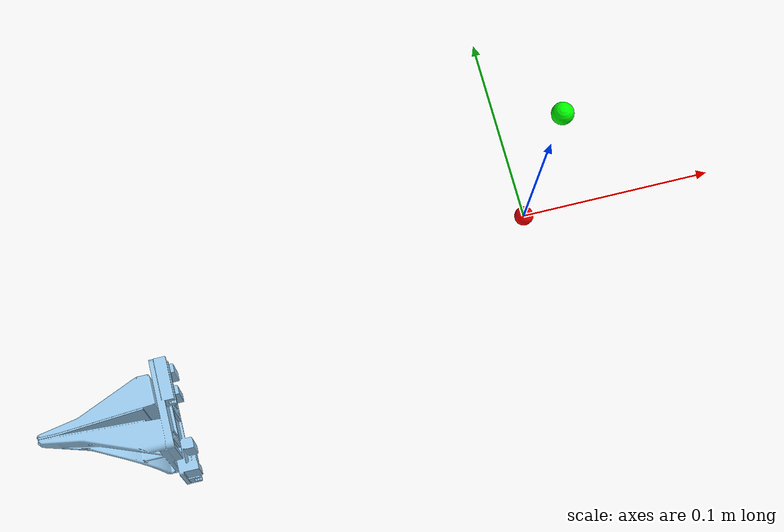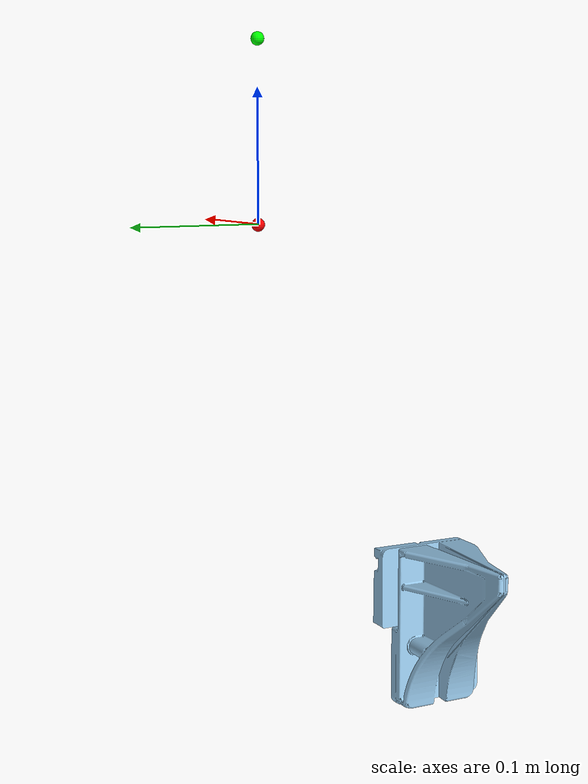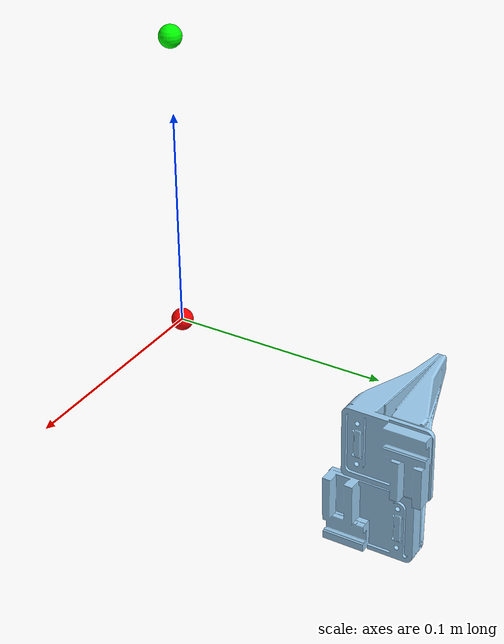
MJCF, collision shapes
<mujoco model="linear_3507">
  <compiler angle="radian" meshdir="assets"/>

  <asset>
    <mesh name="gripper" file="gripper.stl"/>
    <mesh name="tip_left" file="tip_left.stl"/>
    <mesh name="tip_right" file="tip_right.stl"/>
  </asset>

  <worldbody>
    <body name="gripper" pos="0 0 0" quat="0 0.70711 0.70711 0">
      <inertial pos="-3.57066e-05 0.000249371 -0.0293133" quat="0.667981 0.744113 -0.00433092 0.00882801" mass="0.303" diaginertia="0.000409686 0.000369758 0.000324415"/>
      <geom pos="-0.014 -0.0463995 0.0731" quat="1 0 0 0" type="mesh" rgba="0.109804 0.286275 0.0117647 1" mesh="gripper" contype="0" conaffinity="0"/>
      <site name="tcp_site" pos="0 0 0" quat="0 1 0 0" size="0.005" rgba="1 0 0 1"/>
      <site name="grasp_site" pos="0 0 -0.1347" quat="0 1 0 0" size="0.005" rgba="0 1 0 1"/>
      <body name="tip_left" pos="-0.0238981 0.0450619 -0.0545599" quat="0.499998 -0.5 -0.5 -0.500002">
        <inertial pos="-0.0224716 0.0143408 -0.0426253" quat="0.498899 0.455348 -0.0576406 0.735143" mass="0.0710042" diaginertia="6.24193e-05 6.01079e-05 2.83591e-05"/>
        <joint name="joint7" pos="0 0 0" type="slide" axis="0 0 -1" range="0 0.0475"/>
        <geom pos="0.129783 0.00999321 -0.0914614" quat="0.499998 0.5 0.500002 0.5" type="mesh" rgba="0.596078 0.788235 0.921569 1" mesh="tip_left"/>
      </body>
      <body name="tip_right" pos="0.0238981 -0.0450619 -0.0545599" quat="0.707105 0.707108 0 0">
        <inertial pos="-0.0143408 -0.0224716 -0.0426253" quat="0.281222 0.8726 0.16705 -0.362738" mass="0.0710042" diaginertia="6.24193e-05 6.01079e-05 2.83591e-05"/>
        <joint name="joint8" pos="0 0 0" type="slide" axis="0 0 -1" range="0 0.0475"/>
        <geom pos="-0.0379932 0.129783 0.00133753" quat="0.707105 -0.707108 0 0" type="mesh" rgba="0.596078 0.788235 0.921569 1" mesh="tip_right"/>
      </body>
    </body>
  </worldbody>

  <equality>
    <joint joint1="joint7" joint2="joint8" polycoef="0 1 0 0 0"/>
  </equality>

  <contact>
    <exclude body1="gripper" body2="tip_left"/>
    <exclude body1="gripper" body2="tip_right"/>
    <exclude body1="tip_left" body2="tip_right"/>
  </contact>
</mujoco>
